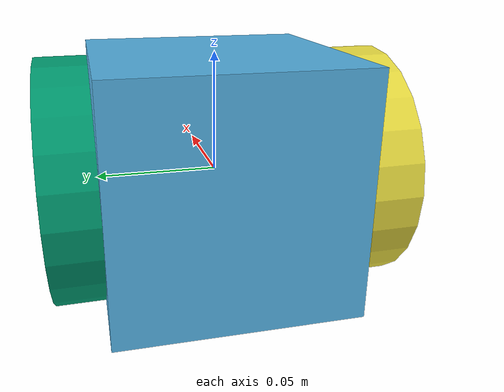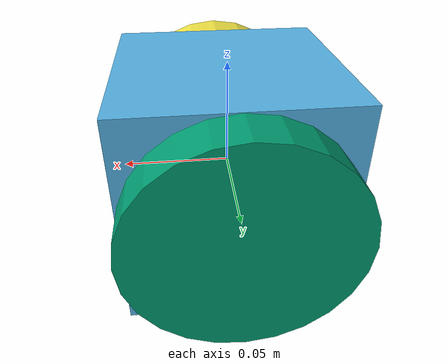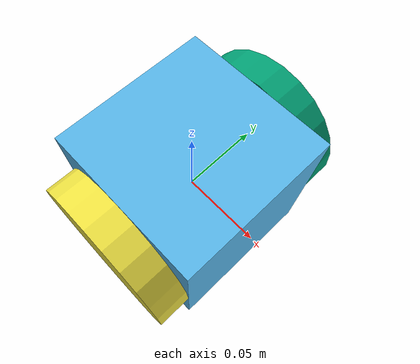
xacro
<?xml version="1.0"?>
<robot xmlns:xacro="http://www.ros.org/wiki/xacro" name="robot_name">
    <xacro:include filename="inertial.xacro"/>
    <xacro:property name="mass" value="1.0"/>
    <xacro:property name="cx" value="0.1"/>
    <xacro:property name="cy" value="0.1"/>
    <xacro:property name="cz" value="0.1"/>
    <link name="base_link"/>

    <joint name="wbase_joint" type="fixed">
        <parent link="base_link"/>
        <child link="base_chasis_link"/>
        <origin xyz="0 0 0" rpy="0 0 0"/>
        <axis xyz="0 0 0"/>
    </joint>

    <link name="base_chasis_link">
        <visual>
            <origin xyz="0 0 0" rpy="0 0 0"/>
            <geometry>
                <box size="${cx} ${cy} ${cz}"/>
            </geometry>
        </visual>
        <xacro:inertial_box mass="0.5" x="${cx}" y="${cy}" z="${cz}">
            <origin xyz="0 0 0" rpy="0 0 0"/>
        </xacro:inertial_box>
    </link>

    <joint name="wheel_joint" type="continuous">
        <parent link="base_link"/>
        <child link="wheel_link"/>
        <origin xyz="0 0.06 0" rpy="1.56 0 0"/>
        <axis xyz="0 0 1"/>
    </joint>

    <link name="wheel_link">
        <visual>
            <origin xyz="0 0 0" rpy="0 0 0"/>
            <geometry>
                <cylinder radius="0.05" length="0.02"/>
            </geometry>
        </visual>
    </link>

    <joint name="wheel_joint1" type="continuous">
        <parent link="base_link"/>
        <child link="wheel_link1"/>
        <origin xyz="0 -0.06 0" rpy="1.56 0 0"/>
        <axis xyz="0 0 1"/>
    </joint>

    <link name="wheel_link1">
        <visual>
            <origin xyz="0 0 0" rpy="0 0 0"/>
            <geometry>
            <cylinder radius="0.05" length="0.02"/>
            </geometry>
        </visual>
        <collision>
            <origin xyz="0 0 0" rpy="0 0 0"/>
            <geometry>
            <cylinder radius="0.05" length="0.02"/>
            </geometry>
        </collision>
    </link>

</robot>
